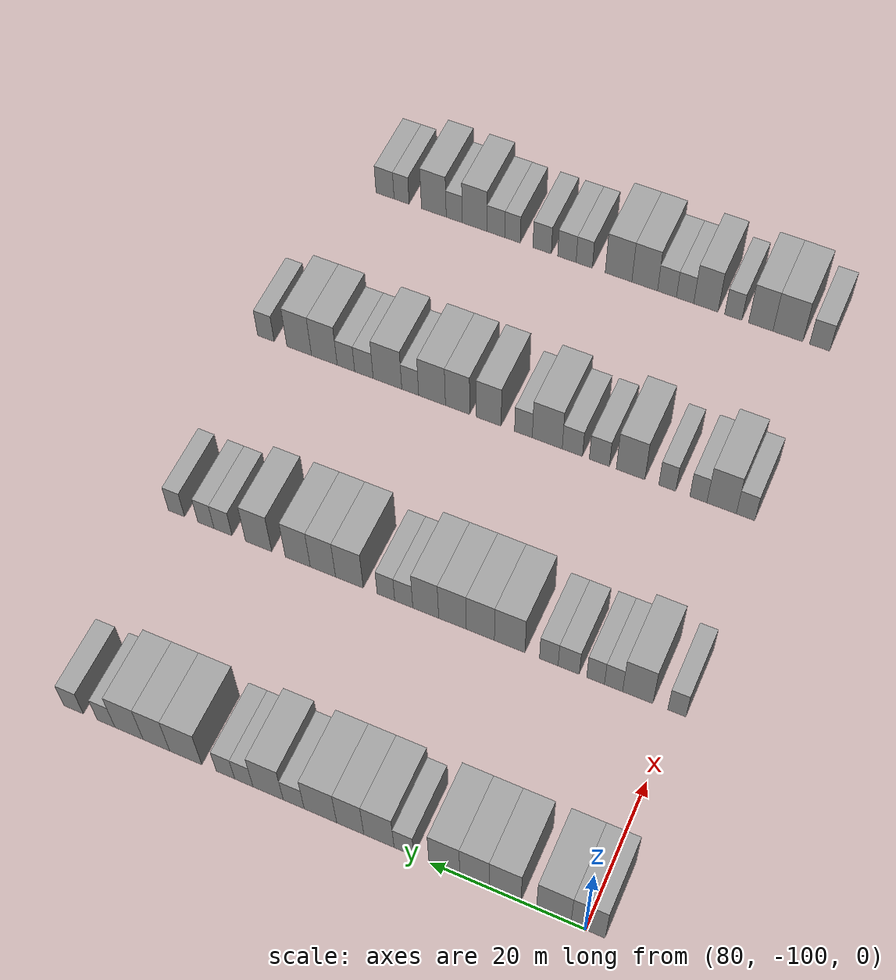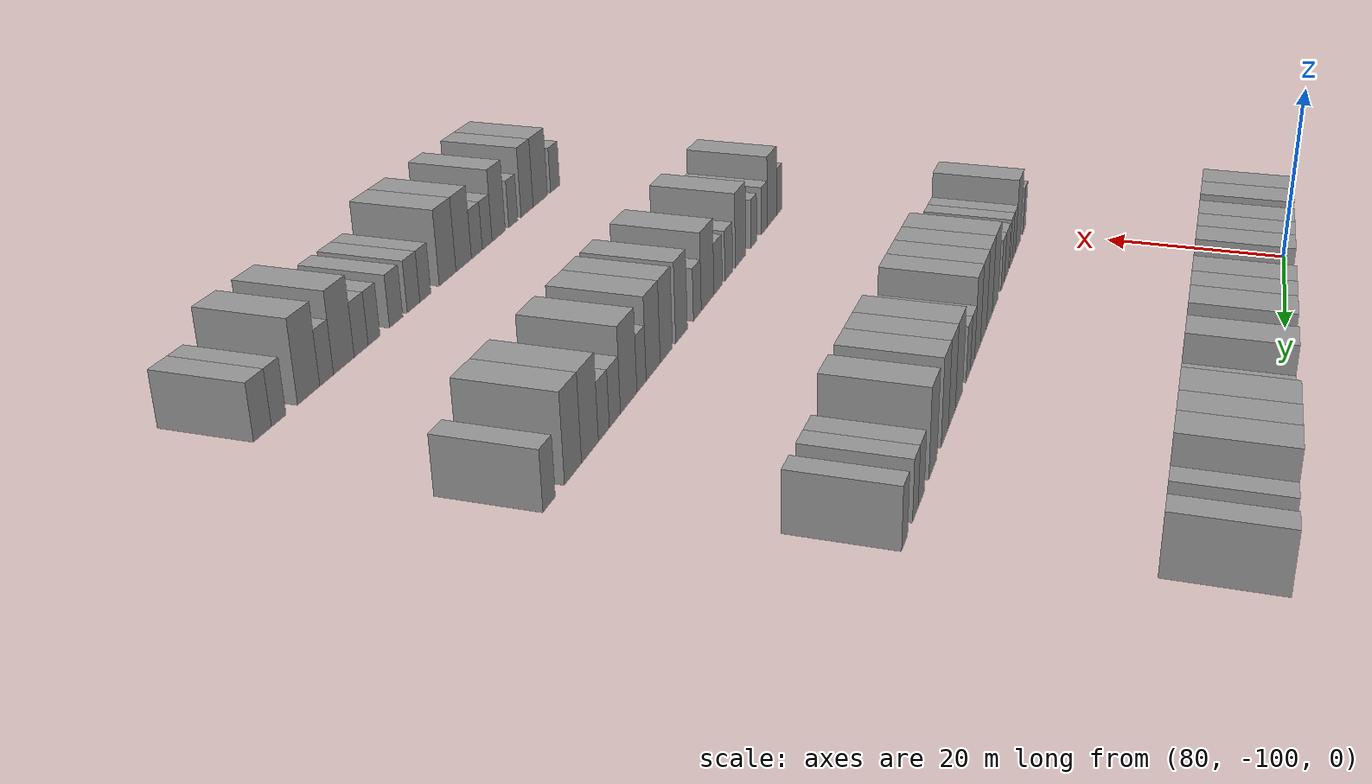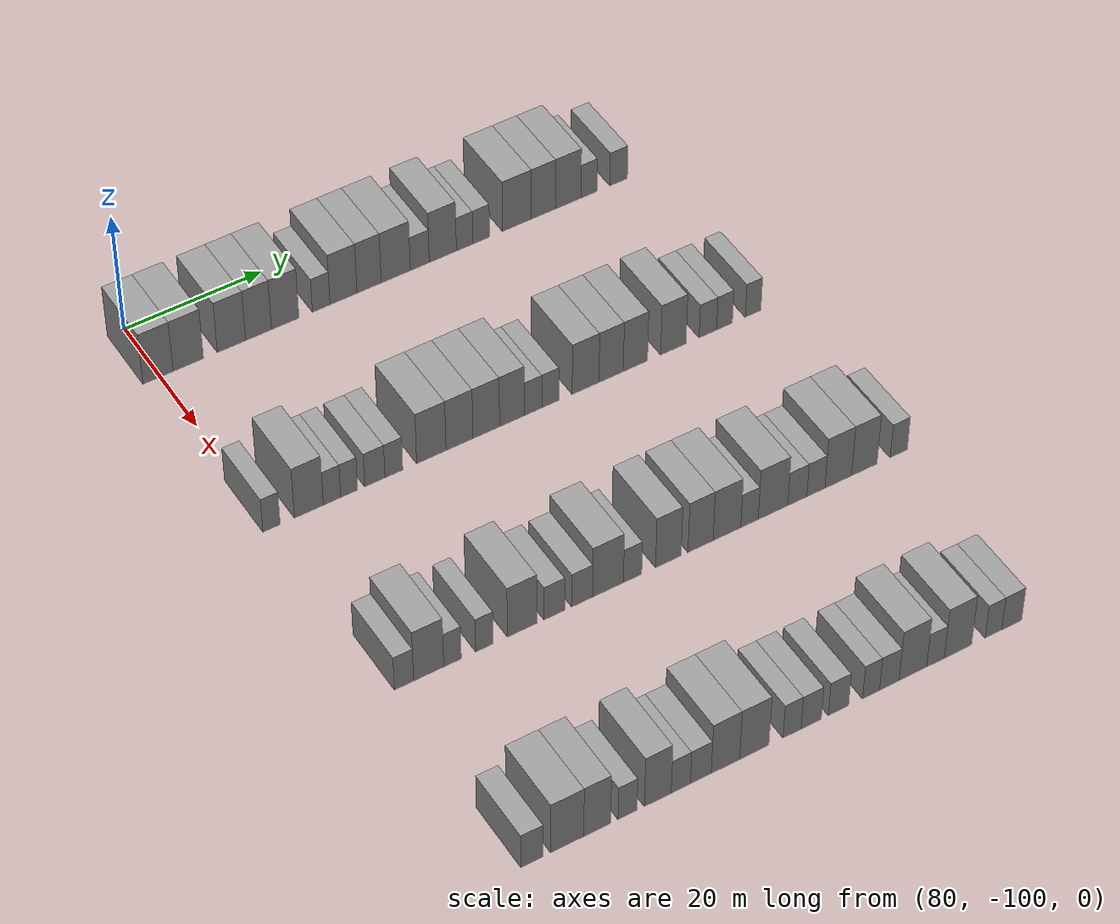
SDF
<sdf version="1.6">
 <world name="default">
  <model name="building_572">
   <static>1</static>
   <pose>85.0000 -100.3070 0 0.000000 0.000000 0.000000</pose>
   <link name="link">
    <pose>0 0 4.50 0 0 0</pose>
    <collision name="collision"><geometry><box><size>10.0000 4.3554 9.0000</size></box></geometry></collision>
    <visual name="visual">
     <cast_shadows>0</cast_shadows>
     <geometry><box><size>10.0000 4.3554 9.0000</size></box></geometry>
     <material>
      <script>
       <uri>model://grey_wall/materials/scripts</uri>
       <uri>model://grey_wall/materials/textures</uri>
       <name>vrc/grey_wall</name>
      </script>
     </material>
    </visual>
   </link>
  </model>
  <model name="building_573">
   <static>1</static>
   <pose>85.0000 -95.9384 0 0.000000 0.000000 0.000000</pose>
   <link name="link">
    <pose>0 0 4.50 0 0 0</pose>
    <collision name="collision"><geometry><box><size>10.0000 4.3819 9.0000</size></box></geometry></collision>
    <visual name="visual">
     <cast_shadows>0</cast_shadows>
     <geometry><box><size>10.0000 4.3819 9.0000</size></box></geometry>
     <material>
      <script>
       <uri>model://grey_wall/materials/scripts</uri>
       <uri>model://grey_wall/materials/textures</uri>
       <name>vrc/grey_wall</name>
      </script>
     </material>
    </visual>
   </link>
  </model>
  <model name="building_574">
   <static>1</static>
   <pose>85.0000 -89.6862 0 0.000000 0.000000 0.000000</pose>
   <link name="link">
    <pose>0 0 4.50 0 0 0</pose>
    <collision name="collision"><geometry><box><size>10.0000 4.1224 9.0000</size></box></geometry></collision>
    <visual name="visual">
     <cast_shadows>0</cast_shadows>
     <geometry><box><size>10.0000 4.1224 9.0000</size></box></geometry>
     <material>
      <script>
       <uri>model://grey_wall/materials/scripts</uri>
       <uri>model://grey_wall/materials/textures</uri>
       <name>vrc/grey_wall</name>
      </script>
     </material>
    </visual>
   </link>
  </model>
  <model name="building_575">
   <static>1</static>
   <pose>85.0000 -85.7247 0 0.000000 0.000000 0.000000</pose>
   <link name="link">
    <pose>0 0 4.50 0 0 0</pose>
    <collision name="collision"><geometry><box><size>10.0000 3.8007 9.0000</size></box></geometry></collision>
    <visual name="visual">
     <cast_shadows>0</cast_shadows>
     <geometry><box><size>10.0000 3.8007 9.0000</size></box></geometry>
     <material>
      <script>
       <uri>model://grey_wall/materials/scripts</uri>
       <uri>model://grey_wall/materials/textures</uri>
       <name>vrc/grey_wall</name>
      </script>
     </material>
    </visual>
   </link>
  </model>
  <model name="building_576">
   <static>1</static>
   <pose>85.0000 -81.8043 0 0.000000 0.000000 0.000000</pose>
   <link name="link">
    <pose>0 0 4.50 0 0 0</pose>
    <collision name="collision"><geometry><box><size>10.0000 4.0400 9.0000</size></box></geometry></collision>
    <visual name="visual">
     <cast_shadows>0</cast_shadows>
     <geometry><box><size>10.0000 4.0400 9.0000</size></box></geometry>
     <material>
      <script>
       <uri>model://grey_wall/materials/scripts</uri>
       <uri>model://grey_wall/materials/textures</uri>
       <name>vrc/grey_wall</name>
      </script>
     </material>
    </visual>
   </link>
  </model>
  <model name="building_577">
   <static>1</static>
   <pose>85.0000 -76.4784 0 0.000000 0.000000 0.000000</pose>
   <link name="link">
    <pose>0 0 3.00 0 0 0</pose>
    <collision name="collision"><geometry><box><size>10.0000 2.6119 6.0000</size></box></geometry></collision>
    <visual name="visual">
     <cast_shadows>0</cast_shadows>
     <geometry><box><size>10.0000 2.6119 6.0000</size></box></geometry>
     <material>
      <script>
       <uri>model://grey_wall/materials/scripts</uri>
       <uri>model://grey_wall/materials/textures</uri>
       <name>vrc/grey_wall</name>
      </script>
     </material>
    </visual>
   </link>
  </model>
  <model name="building_578">
   <static>1</static>
   <pose>85.0000 -73.1591 0 0.000000 0.000000 0.000000</pose>
   <link name="link">
    <pose>0 0 4.50 0 0 0</pose>
    <collision name="collision"><geometry><box><size>10.0000 4.0268 9.0000</size></box></geometry></collision>
    <visual name="visual">
     <cast_shadows>0</cast_shadows>
     <geometry><box><size>10.0000 4.0268 9.0000</size></box></geometry>
     <material>
      <script>
       <uri>model://grey_wall/materials/scripts</uri>
       <uri>model://grey_wall/materials/textures</uri>
       <name>vrc/grey_wall</name>
      </script>
     </material>
    </visual>
   </link>
  </model>
  <model name="building_579">
   <static>1</static>
   <pose>85.0000 -69.3220 0 0.000000 0.000000 0.000000</pose>
   <link name="link">
    <pose>0 0 4.50 0 0 0</pose>
    <collision name="collision"><geometry><box><size>10.0000 3.6474 9.0000</size></box></geometry></collision>
    <visual name="visual">
     <cast_shadows>0</cast_shadows>
     <geometry><box><size>10.0000 3.6474 9.0000</size></box></geometry>
     <material>
      <script>
       <uri>model://grey_wall/materials/scripts</uri>
       <uri>model://grey_wall/materials/textures</uri>
       <name>vrc/grey_wall</name>
      </script>
     </material>
    </visual>
   </link>
  </model>
  <model name="building_580">
   <static>1</static>
   <pose>85.0000 -65.3040 0 0.000000 0.000000 0.000000</pose>
   <link name="link">
    <pose>0 0 4.50 0 0 0</pose>
    <collision name="collision"><geometry><box><size>10.0000 4.3887 9.0000</size></box></geometry></collision>
    <visual name="visual">
     <cast_shadows>0</cast_shadows>
     <geometry><box><size>10.0000 4.3887 9.0000</size></box></geometry>
     <material>
      <script>
       <uri>model://grey_wall/materials/scripts</uri>
       <uri>model://grey_wall/materials/textures</uri>
       <name>vrc/grey_wall</name>
      </script>
     </material>
    </visual>
   </link>
  </model>
  <model name="building_581">
   <static>1</static>
   <pose>85.0000 -61.6801 0 0.000000 0.000000 0.000000</pose>
   <link name="link">
    <pose>0 0 3.00 0 0 0</pose>
    <collision name="collision"><geometry><box><size>10.0000 2.8589 6.0000</size></box></geometry></collision>
    <visual name="visual">
     <cast_shadows>0</cast_shadows>
     <geometry><box><size>10.0000 2.8589 6.0000</size></box></geometry>
     <material>
      <script>
       <uri>model://grey_wall/materials/scripts</uri>
       <uri>model://grey_wall/materials/textures</uri>
       <name>vrc/grey_wall</name>
      </script>
     </material>
    </visual>
   </link>
  </model>
  <model name="building_582">
   <static>1</static>
   <pose>85.0000 -58.1791 0 0.000000 0.000000 0.000000</pose>
   <link name="link">
    <pose>0 0 4.50 0 0 0</pose>
    <collision name="collision"><geometry><box><size>10.0000 4.1432 9.0000</size></box></geometry></collision>
    <visual name="visual">
     <cast_shadows>0</cast_shadows>
     <geometry><box><size>10.0000 4.1432 9.0000</size></box></geometry>
     <material>
      <script>
       <uri>model://grey_wall/materials/scripts</uri>
       <uri>model://grey_wall/materials/textures</uri>
       <name>vrc/grey_wall</name>
      </script>
     </material>
    </visual>
   </link>
  </model>
  <model name="building_583">
   <static>1</static>
   <pose>85.0000 -54.8451 0 0.000000 0.000000 0.000000</pose>
   <link name="link">
    <pose>0 0 3.00 0 0 0</pose>
    <collision name="collision"><geometry><box><size>10.0000 2.5248 6.0000</size></box></geometry></collision>
    <visual name="visual">
     <cast_shadows>0</cast_shadows>
     <geometry><box><size>10.0000 2.5248 6.0000</size></box></geometry>
     <material>
      <script>
       <uri>model://grey_wall/materials/scripts</uri>
       <uri>model://grey_wall/materials/textures</uri>
       <name>vrc/grey_wall</name>
      </script>
     </material>
    </visual>
   </link>
  </model>
  <model name="building_584">
   <static>1</static>
   <pose>85.0000 -52.3017 0 0.000000 0.000000 0.000000</pose>
   <link name="link">
    <pose>0 0 3.00 0 0 0</pose>
    <collision name="collision"><geometry><box><size>10.0000 2.5620 6.0000</size></box></geometry></collision>
    <visual name="visual">
     <cast_shadows>0</cast_shadows>
     <geometry><box><size>10.0000 2.5620 6.0000</size></box></geometry>
     <material>
      <script>
       <uri>model://grey_wall/materials/scripts</uri>
       <uri>model://grey_wall/materials/textures</uri>
       <name>vrc/grey_wall</name>
      </script>
     </material>
    </visual>
   </link>
  </model>
  <model name="building_585">
   <static>1</static>
   <pose>85.0000 -46.7744 0 0.000000 0.000000 0.000000</pose>
   <link name="link">
    <pose>0 0 4.50 0 0 0</pose>
    <collision name="collision"><geometry><box><size>10.0000 4.4927 9.0000</size></box></geometry></collision>
    <visual name="visual">
     <cast_shadows>0</cast_shadows>
     <geometry><box><size>10.0000 4.4927 9.0000</size></box></geometry>
     <material>
      <script>
       <uri>model://grey_wall/materials/scripts</uri>
       <uri>model://grey_wall/materials/textures</uri>
       <name>vrc/grey_wall</name>
      </script>
     </material>
    </visual>
   </link>
  </model>
  <model name="building_586">
   <static>1</static>
   <pose>85.0000 -42.6529 0 0.000000 0.000000 0.000000</pose>
   <link name="link">
    <pose>0 0 4.50 0 0 0</pose>
    <collision name="collision"><geometry><box><size>10.0000 3.7502 9.0000</size></box></geometry></collision>
    <visual name="visual">
     <cast_shadows>0</cast_shadows>
     <geometry><box><size>10.0000 3.7502 9.0000</size></box></geometry>
     <material>
      <script>
       <uri>model://grey_wall/materials/scripts</uri>
       <uri>model://grey_wall/materials/textures</uri>
       <name>vrc/grey_wall</name>
      </script>
     </material>
    </visual>
   </link>
  </model>
  <model name="building_587">
   <static>1</static>
   <pose>85.0000 -38.7747 0 0.000000 0.000000 0.000000</pose>
   <link name="link">
    <pose>0 0 4.50 0 0 0</pose>
    <collision name="collision"><geometry><box><size>10.0000 4.0063 9.0000</size></box></geometry></collision>
    <visual name="visual">
     <cast_shadows>0</cast_shadows>
     <geometry><box><size>10.0000 4.0063 9.0000</size></box></geometry>
     <material>
      <script>
       <uri>model://grey_wall/materials/scripts</uri>
       <uri>model://grey_wall/materials/textures</uri>
       <name>vrc/grey_wall</name>
      </script>
     </material>
    </visual>
   </link>
  </model>
  <model name="building_588">
   <static>1</static>
   <pose>85.0000 -35.5119 0 0.000000 0.000000 0.000000</pose>
   <link name="link">
    <pose>0 0 3.00 0 0 0</pose>
    <collision name="collision"><geometry><box><size>10.0000 2.5193 6.0000</size></box></geometry></collision>
    <visual name="visual">
     <cast_shadows>0</cast_shadows>
     <geometry><box><size>10.0000 2.5193 6.0000</size></box></geometry>
     <material>
      <script>
       <uri>model://grey_wall/materials/scripts</uri>
       <uri>model://grey_wall/materials/textures</uri>
       <name>vrc/grey_wall</name>
      </script>
     </material>
    </visual>
   </link>
  </model>
  <model name="building_589">
   <static>1</static>
   <pose>85.0000 -30.8724 0 0.000000 0.000000 0.000000</pose>
   <link name="link">
    <pose>0 0 3.00 0 0 0</pose>
    <collision name="collision"><geometry><box><size>10.0000 2.7597 6.0000</size></box></geometry></collision>
    <visual name="visual">
     <cast_shadows>0</cast_shadows>
     <geometry><box><size>10.0000 2.7597 6.0000</size></box></geometry>
     <material>
      <script>
       <uri>model://grey_wall/materials/scripts</uri>
       <uri>model://grey_wall/materials/textures</uri>
       <name>vrc/grey_wall</name>
      </script>
     </material>
    </visual>
   </link>
  </model>
  <model name="building_805">
   <static>1</static>
   <pose>115.0000 -100.1216 0 0.000000 0.000000 0.000000</pose>
   <link name="link">
    <pose>0 0 3.00 0 0 0</pose>
    <collision name="collision"><geometry><box><size>10.0000 2.4335 6.0000</size></box></geometry></collision>
    <visual name="visual">
     <cast_shadows>0</cast_shadows>
     <geometry><box><size>10.0000 2.4335 6.0000</size></box></geometry>
     <material>
      <script>
       <uri>model://grey_wall/materials/scripts</uri>
       <uri>model://grey_wall/materials/textures</uri>
       <name>vrc/grey_wall</name>
      </script>
     </material>
    </visual>
   </link>
  </model>
  <model name="building_806">
   <static>1</static>
   <pose>115.0000 -94.8588 0 0.000000 0.000000 0.000000</pose>
   <link name="link">
    <pose>0 0 4.50 0 0 0</pose>
    <collision name="collision"><geometry><box><size>10.0000 4.0920 9.0000</size></box></geometry></collision>
    <visual name="visual">
     <cast_shadows>0</cast_shadows>
     <geometry><box><size>10.0000 4.0920 9.0000</size></box></geometry>
     <material>
      <script>
       <uri>model://grey_wall/materials/scripts</uri>
       <uri>model://grey_wall/materials/textures</uri>
       <name>vrc/grey_wall</name>
      </script>
     </material>
    </visual>
   </link>
  </model>
  <model name="building_807">
   <static>1</static>
   <pose>115.0000 -91.5837 0 0.000000 0.000000 0.000000</pose>
   <link name="link">
    <pose>0 0 3.00 0 0 0</pose>
    <collision name="collision"><geometry><box><size>10.0000 2.4583 6.0000</size></box></geometry></collision>
    <visual name="visual">
     <cast_shadows>0</cast_shadows>
     <geometry><box><size>10.0000 2.4583 6.0000</size></box></geometry>
     <material>
      <script>
       <uri>model://grey_wall/materials/scripts</uri>
       <uri>model://grey_wall/materials/textures</uri>
       <name>vrc/grey_wall</name>
      </script>
     </material>
    </visual>
   </link>
  </model>
  <model name="building_808">
   <static>1</static>
   <pose>115.0000 -89.1482 0 0.000000 0.000000 0.000000</pose>
   <link name="link">
    <pose>0 0 3.00 0 0 0</pose>
    <collision name="collision"><geometry><box><size>10.0000 2.4127 6.0000</size></box></geometry></collision>
    <visual name="visual">
     <cast_shadows>0</cast_shadows>
     <geometry><box><size>10.0000 2.4127 6.0000</size></box></geometry>
     <material>
      <script>
       <uri>model://grey_wall/materials/scripts</uri>
       <uri>model://grey_wall/materials/textures</uri>
       <name>vrc/grey_wall</name>
      </script>
     </material>
    </visual>
   </link>
  </model>
  <model name="building_809">
   <static>1</static>
   <pose>115.0000 -85.4856 0 0.000000 0.000000 0.000000</pose>
   <link name="link">
    <pose>0 0 3.00 0 0 0</pose>
    <collision name="collision"><geometry><box><size>10.0000 2.9124 6.0000</size></box></geometry></collision>
    <visual name="visual">
     <cast_shadows>0</cast_shadows>
     <geometry><box><size>10.0000 2.9124 6.0000</size></box></geometry>
     <material>
      <script>
       <uri>model://grey_wall/materials/scripts</uri>
       <uri>model://grey_wall/materials/textures</uri>
       <name>vrc/grey_wall</name>
      </script>
     </material>
    </visual>
   </link>
  </model>
  <model name="building_810">
   <static>1</static>
   <pose>115.0000 -82.7535 0 0.000000 0.000000 0.000000</pose>
   <link name="link">
    <pose>0 0 3.00 0 0 0</pose>
    <collision name="collision"><geometry><box><size>10.0000 2.5517 6.0000</size></box></geometry></collision>
    <visual name="visual">
     <cast_shadows>0</cast_shadows>
     <geometry><box><size>10.0000 2.5517 6.0000</size></box></geometry>
     <material>
      <script>
       <uri>model://grey_wall/materials/scripts</uri>
       <uri>model://grey_wall/materials/textures</uri>
       <name>vrc/grey_wall</name>
      </script>
     </material>
    </visual>
   </link>
  </model>
  <model name="building_811">
   <static>1</static>
   <pose>115.0000 -77.3457 0 0.000000 0.000000 0.000000</pose>
   <link name="link">
    <pose>0 0 4.50 0 0 0</pose>
    <collision name="collision"><geometry><box><size>10.0000 4.2639 9.0000</size></box></geometry></collision>
    <visual name="visual">
     <cast_shadows>0</cast_shadows>
     <geometry><box><size>10.0000 4.2639 9.0000</size></box></geometry>
     <material>
      <script>
       <uri>model://grey_wall/materials/scripts</uri>
       <uri>model://grey_wall/materials/textures</uri>
       <name>vrc/grey_wall</name>
      </script>
     </material>
    </visual>
   </link>
  </model>
  <model name="building_812">
   <static>1</static>
   <pose>115.0000 -73.2490 0 0.000000 0.000000 0.000000</pose>
   <link name="link">
    <pose>0 0 4.50 0 0 0</pose>
    <collision name="collision"><geometry><box><size>10.0000 3.9295 9.0000</size></box></geometry></collision>
    <visual name="visual">
     <cast_shadows>0</cast_shadows>
     <geometry><box><size>10.0000 3.9295 9.0000</size></box></geometry>
     <material>
      <script>
       <uri>model://grey_wall/materials/scripts</uri>
       <uri>model://grey_wall/materials/textures</uri>
       <name>vrc/grey_wall</name>
      </script>
     </material>
    </visual>
   </link>
  </model>
  <model name="building_813">
   <static>1</static>
   <pose>115.0000 -69.3328 0 0.000000 0.000000 0.000000</pose>
   <link name="link">
    <pose>0 0 4.50 0 0 0</pose>
    <collision name="collision"><geometry><box><size>10.0000 3.9030 9.0000</size></box></geometry></collision>
    <visual name="visual">
     <cast_shadows>0</cast_shadows>
     <geometry><box><size>10.0000 3.9030 9.0000</size></box></geometry>
     <material>
      <script>
       <uri>model://grey_wall/materials/scripts</uri>
       <uri>model://grey_wall/materials/textures</uri>
       <name>vrc/grey_wall</name>
      </script>
     </material>
    </visual>
   </link>
  </model>
  <model name="building_814">
   <static>1</static>
   <pose>115.0000 -65.5503 0 0.000000 0.000000 0.000000</pose>
   <link name="link">
    <pose>0 0 4.50 0 0 0</pose>
    <collision name="collision"><geometry><box><size>10.0000 3.6620 9.0000</size></box></geometry></collision>
    <visual name="visual">
     <cast_shadows>0</cast_shadows>
     <geometry><box><size>10.0000 3.6620 9.0000</size></box></geometry>
     <material>
      <script>
       <uri>model://grey_wall/materials/scripts</uri>
       <uri>model://grey_wall/materials/textures</uri>
       <name>vrc/grey_wall</name>
      </script>
     </material>
    </visual>
   </link>
  </model>
  <model name="building_815">
   <static>1</static>
   <pose>115.0000 -62.4287 0 0.000000 0.000000 0.000000</pose>
   <link name="link">
    <pose>0 0 3.00 0 0 0</pose>
    <collision name="collision"><geometry><box><size>10.0000 2.5812 6.0000</size></box></geometry></collision>
    <visual name="visual">
     <cast_shadows>0</cast_shadows>
     <geometry><box><size>10.0000 2.5812 6.0000</size></box></geometry>
     <material>
      <script>
       <uri>model://grey_wall/materials/scripts</uri>
       <uri>model://grey_wall/materials/textures</uri>
       <name>vrc/grey_wall</name>
      </script>
     </material>
    </visual>
   </link>
  </model>
  <model name="building_816">
   <static>1</static>
   <pose>115.0000 -59.8857 0 0.000000 0.000000 0.000000</pose>
   <link name="link">
    <pose>0 0 3.00 0 0 0</pose>
    <collision name="collision"><geometry><box><size>10.0000 2.5049 6.0000</size></box></geometry></collision>
    <visual name="visual">
     <cast_shadows>0</cast_shadows>
     <geometry><box><size>10.0000 2.5049 6.0000</size></box></geometry>
     <material>
      <script>
       <uri>model://grey_wall/materials/scripts</uri>
       <uri>model://grey_wall/materials/textures</uri>
       <name>vrc/grey_wall</name>
      </script>
     </material>
    </visual>
   </link>
  </model>
  <model name="building_817">
   <static>1</static>
   <pose>115.0000 -54.6229 0 0.000000 0.000000 0.000000</pose>
   <link name="link">
    <pose>0 0 4.50 0 0 0</pose>
    <collision name="collision"><geometry><box><size>10.0000 4.0207 9.0000</size></box></geometry></collision>
    <visual name="visual">
     <cast_shadows>0</cast_shadows>
     <geometry><box><size>10.0000 4.0207 9.0000</size></box></geometry>
     <material>
      <script>
       <uri>model://grey_wall/materials/scripts</uri>
       <uri>model://grey_wall/materials/textures</uri>
       <name>vrc/grey_wall</name>
      </script>
     </material>
    </visual>
   </link>
  </model>
  <model name="building_818">
   <static>1</static>
   <pose>115.0000 -50.7762 0 0.000000 0.000000 0.000000</pose>
   <link name="link">
    <pose>0 0 4.50 0 0 0</pose>
    <collision name="collision"><geometry><box><size>10.0000 3.6727 9.0000</size></box></geometry></collision>
    <visual name="visual">
     <cast_shadows>0</cast_shadows>
     <geometry><box><size>10.0000 3.6727 9.0000</size></box></geometry>
     <material>
      <script>
       <uri>model://grey_wall/materials/scripts</uri>
       <uri>model://grey_wall/materials/textures</uri>
       <name>vrc/grey_wall</name>
      </script>
     </material>
    </visual>
   </link>
  </model>
  <model name="building_819">
   <static>1</static>
   <pose>115.0000 -47.1105 0 0.000000 0.000000 0.000000</pose>
   <link name="link">
    <pose>0 0 4.50 0 0 0</pose>
    <collision name="collision"><geometry><box><size>10.0000 3.6587 9.0000</size></box></geometry></collision>
    <visual name="visual">
     <cast_shadows>0</cast_shadows>
     <geometry><box><size>10.0000 3.6587 9.0000</size></box></geometry>
     <material>
      <script>
       <uri>model://grey_wall/materials/scripts</uri>
       <uri>model://grey_wall/materials/textures</uri>
       <name>vrc/grey_wall</name>
      </script>
     </material>
    </visual>
   </link>
  </model>
  <model name="building_820">
   <static>1</static>
   <pose>115.0000 -41.3421 0 0.000000 0.000000 0.000000</pose>
   <link name="link">
    <pose>0 0 4.50 0 0 0</pose>
    <collision name="collision"><geometry><box><size>10.0000 3.8780 9.0000</size></box></geometry></collision>
    <visual name="visual">
     <cast_shadows>0</cast_shadows>
     <geometry><box><size>10.0000 3.8780 9.0000</size></box></geometry>
     <material>
      <script>
       <uri>model://grey_wall/materials/scripts</uri>
       <uri>model://grey_wall/materials/textures</uri>
       <name>vrc/grey_wall</name>
      </script>
     </material>
    </visual>
   </link>
  </model>
  <model name="building_821">
   <static>1</static>
   <pose>115.0000 -36.0534 0 0.000000 0.000000 0.000000</pose>
   <link name="link">
    <pose>0 0 3.00 0 0 0</pose>
    <collision name="collision"><geometry><box><size>10.0000 2.6993 6.0000</size></box></geometry></collision>
    <visual name="visual">
     <cast_shadows>0</cast_shadows>
     <geometry><box><size>10.0000 2.6993 6.0000</size></box></geometry>
     <material>
      <script>
       <uri>model://grey_wall/materials/scripts</uri>
       <uri>model://grey_wall/materials/textures</uri>
       <name>vrc/grey_wall</name>
      </script>
     </material>
    </visual>
   </link>
  </model>
  <model name="building_822">
   <static>1</static>
   <pose>115.0000 -33.4888 0 0.000000 0.000000 0.000000</pose>
   <link name="link">
    <pose>0 0 3.00 0 0 0</pose>
    <collision name="collision"><geometry><box><size>10.0000 2.4299 6.0000</size></box></geometry></collision>
    <visual name="visual">
     <cast_shadows>0</cast_shadows>
     <geometry><box><size>10.0000 2.4299 6.0000</size></box></geometry>
     <material>
      <script>
       <uri>model://grey_wall/materials/scripts</uri>
       <uri>model://grey_wall/materials/textures</uri>
       <name>vrc/grey_wall</name>
      </script>
     </material>
    </visual>
   </link>
  </model>
  <model name="building_823">
   <static>1</static>
   <pose>115.0000 -29.0607 0 0.000000 0.000000 0.000000</pose>
   <link name="link">
    <pose>0 0 3.00 0 0 0</pose>
    <collision name="collision"><geometry><box><size>10.0000 2.4263 6.0000</size></box></geometry></collision>
    <visual name="visual">
     <cast_shadows>0</cast_shadows>
     <geometry><box><size>10.0000 2.4263 6.0000</size></box></geometry>
     <material>
      <script>
       <uri>model://grey_wall/materials/scripts</uri>
       <uri>model://grey_wall/materials/textures</uri>
       <name>vrc/grey_wall</name>
      </script>
     </material>
    </visual>
   </link>
  </model>
  <model name="building_1043">
   <static>1</static>
   <pose>145.0000 -98.5328 0 0.000000 0.000000 0.000000</pose>
   <link name="link">
    <pose>0 0 3.00 0 0 0</pose>
    <collision name="collision"><geometry><box><size>10.0000 2.6247 6.0000</size></box></geometry></collision>
    <visual name="visual">
     <cast_shadows>0</cast_shadows>
     <geometry><box><size>10.0000 2.6247 6.0000</size></box></geometry>
     <material>
      <script>
       <uri>model://grey_wall/materials/scripts</uri>
       <uri>model://grey_wall/materials/textures</uri>
       <name>vrc/grey_wall</name>
      </script>
     </material>
    </visual>
   </link>
  </model>
  <model name="building_1044">
   <static>1</static>
   <pose>145.0000 -95.1407 0 0.000000 0.000000 0.000000</pose>
   <link name="link">
    <pose>0 0 4.50 0 0 0</pose>
    <collision name="collision"><geometry><box><size>10.0000 4.1594 9.0000</size></box></geometry></collision>
    <visual name="visual">
     <cast_shadows>0</cast_shadows>
     <geometry><box><size>10.0000 4.1594 9.0000</size></box></geometry>
     <material>
      <script>
       <uri>model://grey_wall/materials/scripts</uri>
       <uri>model://grey_wall/materials/textures</uri>
       <name>vrc/grey_wall</name>
      </script>
     </material>
    </visual>
   </link>
  </model>
  <model name="building_1045">
   <static>1</static>
   <pose>145.0000 -91.8463 0 0.000000 0.000000 0.000000</pose>
   <link name="link">
    <pose>0 0 3.00 0 0 0</pose>
    <collision name="collision"><geometry><box><size>10.0000 2.4295 6.0000</size></box></geometry></collision>
    <visual name="visual">
     <cast_shadows>0</cast_shadows>
     <geometry><box><size>10.0000 2.4295 6.0000</size></box></geometry>
     <material>
      <script>
       <uri>model://grey_wall/materials/scripts</uri>
       <uri>model://grey_wall/materials/textures</uri>
       <name>vrc/grey_wall</name>
      </script>
     </material>
    </visual>
   </link>
  </model>
  <model name="building_1046">
   <static>1</static>
   <pose>145.0000 -87.4148 0 0.000000 0.000000 0.000000</pose>
   <link name="link">
    <pose>0 0 3.00 0 0 0</pose>
    <collision name="collision"><geometry><box><size>10.0000 2.4335 6.0000</size></box></geometry></collision>
    <visual name="visual">
     <cast_shadows>0</cast_shadows>
     <geometry><box><size>10.0000 2.4335 6.0000</size></box></geometry>
     <material>
      <script>
       <uri>model://grey_wall/materials/scripts</uri>
       <uri>model://grey_wall/materials/textures</uri>
       <name>vrc/grey_wall</name>
      </script>
     </material>
    </visual>
   </link>
  </model>
  <model name="building_1047">
   <static>1</static>
   <pose>145.0000 -82.1263 0 0.000000 0.000000 0.000000</pose>
   <link name="link">
    <pose>0 0 4.50 0 0 0</pose>
    <collision name="collision"><geometry><box><size>10.0000 4.1435 9.0000</size></box></geometry></collision>
    <visual name="visual">
     <cast_shadows>0</cast_shadows>
     <geometry><box><size>10.0000 4.1435 9.0000</size></box></geometry>
     <material>
      <script>
       <uri>model://grey_wall/materials/scripts</uri>
       <uri>model://grey_wall/materials/textures</uri>
       <name>vrc/grey_wall</name>
      </script>
     </material>
    </visual>
   </link>
  </model>
  <model name="building_1048">
   <static>1</static>
   <pose>145.0000 -77.5956 0 0.000000 0.000000 0.000000</pose>
   <link name="link">
    <pose>0 0 3.00 0 0 0</pose>
    <collision name="collision"><geometry><box><size>10.0000 2.9179 6.0000</size></box></geometry></collision>
    <visual name="visual">
     <cast_shadows>0</cast_shadows>
     <geometry><box><size>10.0000 2.9179 6.0000</size></box></geometry>
     <material>
      <script>
       <uri>model://grey_wall/materials/scripts</uri>
       <uri>model://grey_wall/materials/textures</uri>
       <name>vrc/grey_wall</name>
      </script>
     </material>
    </visual>
   </link>
  </model>
  <model name="building_1049">
   <static>1</static>
   <pose>145.0000 -73.6486 0 0.000000 0.000000 0.000000</pose>
   <link name="link">
    <pose>0 0 3.00 0 0 0</pose>
    <collision name="collision"><geometry><box><size>10.0000 2.9761 6.0000</size></box></geometry></collision>
    <visual name="visual">
     <cast_shadows>0</cast_shadows>
     <geometry><box><size>10.0000 2.9761 6.0000</size></box></geometry>
     <material>
      <script>
       <uri>model://grey_wall/materials/scripts</uri>
       <uri>model://grey_wall/materials/textures</uri>
       <name>vrc/grey_wall</name>
      </script>
     </material>
    </visual>
   </link>
  </model>
  <model name="building_1050">
   <static>1</static>
   <pose>145.0000 -69.9521 0 0.000000 0.000000 0.000000</pose>
   <link name="link">
    <pose>0 0 4.50 0 0 0</pose>
    <collision name="collision"><geometry><box><size>10.0000 4.4168 9.0000</size></box></geometry></collision>
    <visual name="visual">
     <cast_shadows>0</cast_shadows>
     <geometry><box><size>10.0000 4.4168 9.0000</size></box></geometry>
     <material>
      <script>
       <uri>model://grey_wall/materials/scripts</uri>
       <uri>model://grey_wall/materials/textures</uri>
       <name>vrc/grey_wall</name>
      </script>
     </material>
    </visual>
   </link>
  </model>
  <model name="building_1051">
   <static>1</static>
   <pose>145.0000 -66.4311 0 0.000000 0.000000 0.000000</pose>
   <link name="link">
    <pose>0 0 3.00 0 0 0</pose>
    <collision name="collision"><geometry><box><size>10.0000 2.6254 6.0000</size></box></geometry></collision>
    <visual name="visual">
     <cast_shadows>0</cast_shadows>
     <geometry><box><size>10.0000 2.6254 6.0000</size></box></geometry>
     <material>
      <script>
       <uri>model://grey_wall/materials/scripts</uri>
       <uri>model://grey_wall/materials/textures</uri>
       <name>vrc/grey_wall</name>
      </script>
     </material>
    </visual>
   </link>
  </model>
  <model name="building_1052">
   <static>1</static>
   <pose>145.0000 -61.2684 0 0.000000 0.000000 0.000000</pose>
   <link name="link">
    <pose>0 0 4.50 0 0 0</pose>
    <collision name="collision"><geometry><box><size>10.0000 3.7000 9.0000</size></box></geometry></collision>
    <visual name="visual">
     <cast_shadows>0</cast_shadows>
     <geometry><box><size>10.0000 3.7000 9.0000</size></box></geometry>
     <material>
      <script>
       <uri>model://grey_wall/materials/scripts</uri>
       <uri>model://grey_wall/materials/textures</uri>
       <name>vrc/grey_wall</name>
      </script>
     </material>
    </visual>
   </link>
  </model>
  <model name="building_1053">
   <static>1</static>
   <pose>145.0000 -56.5807 0 0.000000 0.000000 0.000000</pose>
   <link name="link">
    <pose>0 0 4.50 0 0 0</pose>
    <collision name="collision"><geometry><box><size>10.0000 3.6754 9.0000</size></box></geometry></collision>
    <visual name="visual">
     <cast_shadows>0</cast_shadows>
     <geometry><box><size>10.0000 3.6754 9.0000</size></box></geometry>
     <material>
      <script>
       <uri>model://grey_wall/materials/scripts</uri>
       <uri>model://grey_wall/materials/textures</uri>
       <name>vrc/grey_wall</name>
      </script>
     </material>
    </visual>
   </link>
  </model>
  <model name="building_1054">
   <static>1</static>
   <pose>145.0000 -52.7117 0 0.000000 0.000000 0.000000</pose>
   <link name="link">
    <pose>0 0 4.50 0 0 0</pose>
    <collision name="collision"><geometry><box><size>10.0000 4.0626 9.0000</size></box></geometry></collision>
    <visual name="visual">
     <cast_shadows>0</cast_shadows>
     <geometry><box><size>10.0000 4.0626 9.0000</size></box></geometry>
     <material>
      <script>
       <uri>model://grey_wall/materials/scripts</uri>
       <uri>model://grey_wall/materials/textures</uri>
       <name>vrc/grey_wall</name>
      </script>
     </material>
    </visual>
   </link>
  </model>
  <model name="building_1055">
   <static>1</static>
   <pose>145.0000 -49.3933 0 0.000000 0.000000 0.000000</pose>
   <link name="link">
    <pose>0 0 3.00 0 0 0</pose>
    <collision name="collision"><geometry><box><size>10.0000 2.5742 6.0000</size></box></geometry></collision>
    <visual name="visual">
     <cast_shadows>0</cast_shadows>
     <geometry><box><size>10.0000 2.5742 6.0000</size></box></geometry>
     <material>
      <script>
       <uri>model://grey_wall/materials/scripts</uri>
       <uri>model://grey_wall/materials/textures</uri>
       <name>vrc/grey_wall</name>
      </script>
     </material>
    </visual>
   </link>
  </model>
  <model name="building_1056">
   <static>1</static>
   <pose>145.0000 -45.9082 0 0.000000 0.000000 0.000000</pose>
   <link name="link">
    <pose>0 0 4.50 0 0 0</pose>
    <collision name="collision"><geometry><box><size>10.0000 4.3960 9.0000</size></box></geometry></collision>
    <visual name="visual">
     <cast_shadows>0</cast_shadows>
     <geometry><box><size>10.0000 4.3960 9.0000</size></box></geometry>
     <material>
      <script>
       <uri>model://grey_wall/materials/scripts</uri>
       <uri>model://grey_wall/materials/textures</uri>
       <name>vrc/grey_wall</name>
      </script>
     </material>
    </visual>
   </link>
  </model>
  <model name="building_1057">
   <static>1</static>
   <pose>145.0000 -42.2828 0 0.000000 0.000000 0.000000</pose>
   <link name="link">
    <pose>0 0 3.00 0 0 0</pose>
    <collision name="collision"><geometry><box><size>10.0000 2.8549 6.0000</size></box></geometry></collision>
    <visual name="visual">
     <cast_shadows>0</cast_shadows>
     <geometry><box><size>10.0000 2.8549 6.0000</size></box></geometry>
     <material>
      <script>
       <uri>model://grey_wall/materials/scripts</uri>
       <uri>model://grey_wall/materials/textures</uri>
       <name>vrc/grey_wall</name>
      </script>
     </material>
    </visual>
   </link>
  </model>
  <model name="building_1058">
   <static>1</static>
   <pose>145.0000 -39.5016 0 0.000000 0.000000 0.000000</pose>
   <link name="link">
    <pose>0 0 3.00 0 0 0</pose>
    <collision name="collision"><geometry><box><size>10.0000 2.7074 6.0000</size></box></geometry></collision>
    <visual name="visual">
     <cast_shadows>0</cast_shadows>
     <geometry><box><size>10.0000 2.7074 6.0000</size></box></geometry>
     <material>
      <script>
       <uri>model://grey_wall/materials/scripts</uri>
       <uri>model://grey_wall/materials/textures</uri>
       <name>vrc/grey_wall</name>
      </script>
     </material>
    </visual>
   </link>
  </model>
  <model name="building_1059">
   <static>1</static>
   <pose>145.0000 -36.1405 0 0.000000 0.000000 0.000000</pose>
   <link name="link">
    <pose>0 0 4.50 0 0 0</pose>
    <collision name="collision"><geometry><box><size>10.0000 4.0148 9.0000</size></box></geometry></collision>
    <visual name="visual">
     <cast_shadows>0</cast_shadows>
     <geometry><box><size>10.0000 4.0148 9.0000</size></box></geometry>
     <material>
      <script>
       <uri>model://grey_wall/materials/scripts</uri>
       <uri>model://grey_wall/materials/textures</uri>
       <name>vrc/grey_wall</name>
      </script>
     </material>
    </visual>
   </link>
  </model>
  <model name="building_1060">
   <static>1</static>
   <pose>145.0000 -32.2034 0 0.000000 0.000000 0.000000</pose>
   <link name="link">
    <pose>0 0 4.50 0 0 0</pose>
    <collision name="collision"><geometry><box><size>10.0000 3.8592 9.0000</size></box></geometry></collision>
    <visual name="visual">
     <cast_shadows>0</cast_shadows>
     <geometry><box><size>10.0000 3.8592 9.0000</size></box></geometry>
     <material>
      <script>
       <uri>model://grey_wall/materials/scripts</uri>
       <uri>model://grey_wall/materials/textures</uri>
       <name>vrc/grey_wall</name>
      </script>
     </material>
    </visual>
   </link>
  </model>
  <model name="building_1061">
   <static>1</static>
   <pose>145.0000 -26.9695 0 0.000000 0.000000 0.000000</pose>
   <link name="link">
    <pose>0 0 3.00 0 0 0</pose>
    <collision name="collision"><geometry><box><size>10.0000 2.6087 6.0000</size></box></geometry></collision>
    <visual name="visual">
     <cast_shadows>0</cast_shadows>
     <geometry><box><size>10.0000 2.6087 6.0000</size></box></geometry>
     <material>
      <script>
       <uri>model://grey_wall/materials/scripts</uri>
       <uri>model://grey_wall/materials/textures</uri>
       <name>vrc/grey_wall</name>
      </script>
     </material>
    </visual>
   </link>
  </model>
  <model name="building_1281">
   <static>1</static>
   <pose>175.0000 -98.8841 0 0.000000 0.000000 0.000000</pose>
   <link name="link">
    <pose>0 0 3.00 0 0 0</pose>
    <collision name="collision"><geometry><box><size>10.0000 2.9786 6.0000</size></box></geometry></collision>
    <visual name="visual">
     <cast_shadows>0</cast_shadows>
     <geometry><box><size>10.0000 2.9786 6.0000</size></box></geometry>
     <material>
      <script>
       <uri>model://grey_wall/materials/scripts</uri>
       <uri>model://grey_wall/materials/textures</uri>
       <name>vrc/grey_wall</name>
      </script>
     </material>
    </visual>
   </link>
  </model>
  <model name="building_1282">
   <static>1</static>
   <pose>175.0000 -94.1681 0 0.000000 0.000000 0.000000</pose>
   <link name="link">
    <pose>0 0 4.50 0 0 0</pose>
    <collision name="collision"><geometry><box><size>10.0000 4.4535 9.0000</size></box></geometry></collision>
    <visual name="visual">
     <cast_shadows>0</cast_shadows>
     <geometry><box><size>10.0000 4.4535 9.0000</size></box></geometry>
     <material>
      <script>
       <uri>model://grey_wall/materials/scripts</uri>
       <uri>model://grey_wall/materials/textures</uri>
       <name>vrc/grey_wall</name>
      </script>
     </material>
    </visual>
   </link>
  </model>
  <model name="building_1283">
   <static>1</static>
   <pose>175.0000 -90.1235 0 0.000000 0.000000 0.000000</pose>
   <link name="link">
    <pose>0 0 4.50 0 0 0</pose>
    <collision name="collision"><geometry><box><size>10.0000 3.6357 9.0000</size></box></geometry></collision>
    <visual name="visual">
     <cast_shadows>0</cast_shadows>
     <geometry><box><size>10.0000 3.6357 9.0000</size></box></geometry>
     <material>
      <script>
       <uri>model://grey_wall/materials/scripts</uri>
       <uri>model://grey_wall/materials/textures</uri>
       <name>vrc/grey_wall</name>
      </script>
     </material>
    </visual>
   </link>
  </model>
  <model name="building_1284">
   <static>1</static>
   <pose>175.0000 -86.0100 0 0.000000 0.000000 0.000000</pose>
   <link name="link">
    <pose>0 0 3.00 0 0 0</pose>
    <collision name="collision"><geometry><box><size>10.0000 2.5913 6.0000</size></box></geometry></collision>
    <visual name="visual">
     <cast_shadows>0</cast_shadows>
     <geometry><box><size>10.0000 2.5913 6.0000</size></box></geometry>
     <material>
      <script>
       <uri>model://grey_wall/materials/scripts</uri>
       <uri>model://grey_wall/materials/textures</uri>
       <name>vrc/grey_wall</name>
      </script>
     </material>
    </visual>
   </link>
  </model>
  <model name="building_1285">
   <static>1</static>
   <pose>175.0000 -81.8653 0 0.000000 0.000000 0.000000</pose>
   <link name="link">
    <pose>0 0 4.50 0 0 0</pose>
    <collision name="collision"><geometry><box><size>10.0000 3.6982 9.0000</size></box></geometry></collision>
    <visual name="visual">
     <cast_shadows>0</cast_shadows>
     <geometry><box><size>10.0000 3.6982 9.0000</size></box></geometry>
     <material>
      <script>
       <uri>model://grey_wall/materials/scripts</uri>
       <uri>model://grey_wall/materials/textures</uri>
       <name>vrc/grey_wall</name>
      </script>
     </material>
    </visual>
   </link>
  </model>
  <model name="building_1286">
   <static>1</static>
   <pose>175.0000 -78.6978 0 0.000000 0.000000 0.000000</pose>
   <link name="link">
    <pose>0 0 3.00 0 0 0</pose>
    <collision name="collision"><geometry><box><size>10.0000 2.6367 6.0000</size></box></geometry></collision>
    <visual name="visual">
     <cast_shadows>0</cast_shadows>
     <geometry><box><size>10.0000 2.6367 6.0000</size></box></geometry>
     <material>
      <script>
       <uri>model://grey_wall/materials/scripts</uri>
       <uri>model://grey_wall/materials/textures</uri>
       <name>vrc/grey_wall</name>
      </script>
     </material>
    </visual>
   </link>
  </model>
  <model name="building_1287">
   <static>1</static>
   <pose>175.0000 -75.9393 0 0.000000 0.000000 0.000000</pose>
   <link name="link">
    <pose>0 0 3.00 0 0 0</pose>
    <collision name="collision"><geometry><box><size>10.0000 2.8805 6.0000</size></box></geometry></collision>
    <visual name="visual">
     <cast_shadows>0</cast_shadows>
     <geometry><box><size>10.0000 2.8805 6.0000</size></box></geometry>
     <material>
      <script>
       <uri>model://grey_wall/materials/scripts</uri>
       <uri>model://grey_wall/materials/textures</uri>
       <name>vrc/grey_wall</name>
      </script>
     </material>
    </visual>
   </link>
  </model>
  <model name="building_1288">
   <static>1</static>
   <pose>175.0000 -72.5213 0 0.000000 0.000000 0.000000</pose>
   <link name="link">
    <pose>0 0 4.50 0 0 0</pose>
    <collision name="collision"><geometry><box><size>10.0000 3.9554 9.0000</size></box></geometry></collision>
    <visual name="visual">
     <cast_shadows>0</cast_shadows>
     <geometry><box><size>10.0000 3.9554 9.0000</size></box></geometry>
     <material>
      <script>
       <uri>model://grey_wall/materials/scripts</uri>
       <uri>model://grey_wall/materials/textures</uri>
       <name>vrc/grey_wall</name>
      </script>
     </material>
    </visual>
   </link>
  </model>
  <model name="building_1289">
   <static>1</static>
   <pose>175.0000 -68.4875 0 0.000000 0.000000 0.000000</pose>
   <link name="link">
    <pose>0 0 4.50 0 0 0</pose>
    <collision name="collision"><geometry><box><size>10.0000 4.1124 9.0000</size></box></geometry></collision>
    <visual name="visual">
     <cast_shadows>0</cast_shadows>
     <geometry><box><size>10.0000 4.1124 9.0000</size></box></geometry>
     <material>
      <script>
       <uri>model://grey_wall/materials/scripts</uri>
       <uri>model://grey_wall/materials/textures</uri>
       <name>vrc/grey_wall</name>
      </script>
     </material>
    </visual>
   </link>
  </model>
  <model name="building_1290">
   <static>1</static>
   <pose>175.0000 -63.1584 0 0.000000 0.000000 0.000000</pose>
   <link name="link">
    <pose>0 0 3.00 0 0 0</pose>
    <collision name="collision"><geometry><box><size>10.0000 2.5456 6.0000</size></box></geometry></collision>
    <visual name="visual">
     <cast_shadows>0</cast_shadows>
     <geometry><box><size>10.0000 2.5456 6.0000</size></box></geometry>
     <material>
      <script>
       <uri>model://grey_wall/materials/scripts</uri>
       <uri>model://grey_wall/materials/textures</uri>
       <name>vrc/grey_wall</name>
      </script>
     </material>
    </visual>
   </link>
  </model>
  <model name="building_1291">
   <static>1</static>
   <pose>175.0000 -60.4470 0 0.000000 0.000000 0.000000</pose>
   <link name="link">
    <pose>0 0 3.00 0 0 0</pose>
    <collision name="collision"><geometry><box><size>10.0000 2.8772 6.0000</size></box></geometry></collision>
    <visual name="visual">
     <cast_shadows>0</cast_shadows>
     <geometry><box><size>10.0000 2.8772 6.0000</size></box></geometry>
     <material>
      <script>
       <uri>model://grey_wall/materials/scripts</uri>
       <uri>model://grey_wall/materials/textures</uri>
       <name>vrc/grey_wall</name>
      </script>
     </material>
    </visual>
   </link>
  </model>
  <model name="building_1292">
   <static>1</static>
   <pose>175.0000 -56.5634 0 0.000000 0.000000 0.000000</pose>
   <link name="link">
    <pose>0 0 3.00 0 0 0</pose>
    <collision name="collision"><geometry><box><size>10.0000 2.8900 6.0000</size></box></geometry></collision>
    <visual name="visual">
     <cast_shadows>0</cast_shadows>
     <geometry><box><size>10.0000 2.8900 6.0000</size></box></geometry>
     <material>
      <script>
       <uri>model://grey_wall/materials/scripts</uri>
       <uri>model://grey_wall/materials/textures</uri>
       <name>vrc/grey_wall</name>
      </script>
     </material>
    </visual>
   </link>
  </model>
  <model name="building_1293">
   <static>1</static>
   <pose>175.0000 -51.8923 0 0.000000 0.000000 0.000000</pose>
   <link name="link">
    <pose>0 0 3.00 0 0 0</pose>
    <collision name="collision"><geometry><box><size>10.0000 2.4522 6.0000</size></box></geometry></collision>
    <visual name="visual">
     <cast_shadows>0</cast_shadows>
     <geometry><box><size>10.0000 2.4522 6.0000</size></box></geometry>
     <material>
      <script>
       <uri>model://grey_wall/materials/scripts</uri>
       <uri>model://grey_wall/materials/textures</uri>
       <name>vrc/grey_wall</name>
      </script>
     </material>
    </visual>
   </link>
  </model>
  <model name="building_1294">
   <static>1</static>
   <pose>175.0000 -49.2588 0 0.000000 0.000000 0.000000</pose>
   <link name="link">
    <pose>0 0 3.00 0 0 0</pose>
    <collision name="collision"><geometry><box><size>10.0000 2.8147 6.0000</size></box></geometry></collision>
    <visual name="visual">
     <cast_shadows>0</cast_shadows>
     <geometry><box><size>10.0000 2.8147 6.0000</size></box></geometry>
     <material>
      <script>
       <uri>model://grey_wall/materials/scripts</uri>
       <uri>model://grey_wall/materials/textures</uri>
       <name>vrc/grey_wall</name>
      </script>
     </material>
    </visual>
   </link>
  </model>
  <model name="building_1295">
   <static>1</static>
   <pose>175.0000 -45.8452 0 0.000000 0.000000 0.000000</pose>
   <link name="link">
    <pose>0 0 4.50 0 0 0</pose>
    <collision name="collision"><geometry><box><size>10.0000 4.0126 9.0000</size></box></geometry></collision>
    <visual name="visual">
     <cast_shadows>0</cast_shadows>
     <geometry><box><size>10.0000 4.0126 9.0000</size></box></geometry>
     <material>
      <script>
       <uri>model://grey_wall/materials/scripts</uri>
       <uri>model://grey_wall/materials/textures</uri>
       <name>vrc/grey_wall</name>
      </script>
     </material>
    </visual>
   </link>
  </model>
  <model name="building_1296">
   <static>1</static>
   <pose>175.0000 -42.5524 0 0.000000 0.000000 0.000000</pose>
   <link name="link">
    <pose>0 0 3.00 0 0 0</pose>
    <collision name="collision"><geometry><box><size>10.0000 2.5728 6.0000</size></box></geometry></collision>
    <visual name="visual">
     <cast_shadows>0</cast_shadows>
     <geometry><box><size>10.0000 2.5728 6.0000</size></box></geometry>
     <material>
      <script>
       <uri>model://grey_wall/materials/scripts</uri>
       <uri>model://grey_wall/materials/textures</uri>
       <name>vrc/grey_wall</name>
      </script>
     </material>
    </visual>
   </link>
  </model>
  <model name="building_1297">
   <static>1</static>
   <pose>175.0000 -39.2625 0 0.000000 0.000000 0.000000</pose>
   <link name="link">
    <pose>0 0 4.50 0 0 0</pose>
    <collision name="collision"><geometry><box><size>10.0000 4.0071 9.0000</size></box></geometry></collision>
    <visual name="visual">
     <cast_shadows>0</cast_shadows>
     <geometry><box><size>10.0000 4.0071 9.0000</size></box></geometry>
     <material>
      <script>
       <uri>model://grey_wall/materials/scripts</uri>
       <uri>model://grey_wall/materials/textures</uri>
       <name>vrc/grey_wall</name>
      </script>
     </material>
    </visual>
   </link>
  </model>
  <model name="building_1298">
   <static>1</static>
   <pose>175.0000 -34.0313 0 0.000000 0.000000 0.000000</pose>
   <link name="link">
    <pose>0 0 3.00 0 0 0</pose>
    <collision name="collision"><geometry><box><size>10.0000 2.4551 6.0000</size></box></geometry></collision>
    <visual name="visual">
     <cast_shadows>0</cast_shadows>
     <geometry><box><size>10.0000 2.4551 6.0000</size></box></geometry>
     <material>
      <script>
       <uri>model://grey_wall/materials/scripts</uri>
       <uri>model://grey_wall/materials/textures</uri>
       <name>vrc/grey_wall</name>
      </script>
     </material>
    </visual>
   </link>
  </model>
  <model name="building_1299">
   <static>1</static>
   <pose>175.0000 -31.3294 0 0.000000 0.000000 0.000000</pose>
   <link name="link">
    <pose>0 0 3.00 0 0 0</pose>
    <collision name="collision"><geometry><box><size>10.0000 2.9488 6.0000</size></box></geometry></collision>
    <visual name="visual">
     <cast_shadows>0</cast_shadows>
     <geometry><box><size>10.0000 2.9488 6.0000</size></box></geometry>
     <material>
      <script>
       <uri>model://grey_wall/materials/scripts</uri>
       <uri>model://grey_wall/materials/textures</uri>
       <name>vrc/grey_wall</name>
      </script>
     </material>
    </visual>
   </link>
  </model>
 </world>
</sdf>
